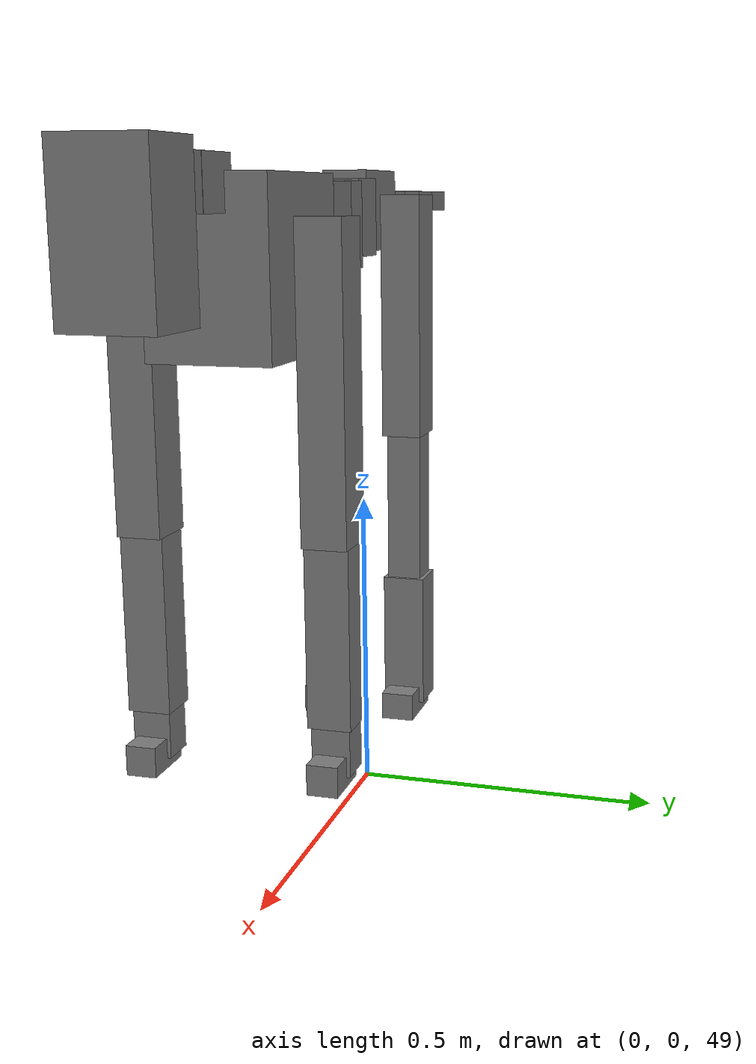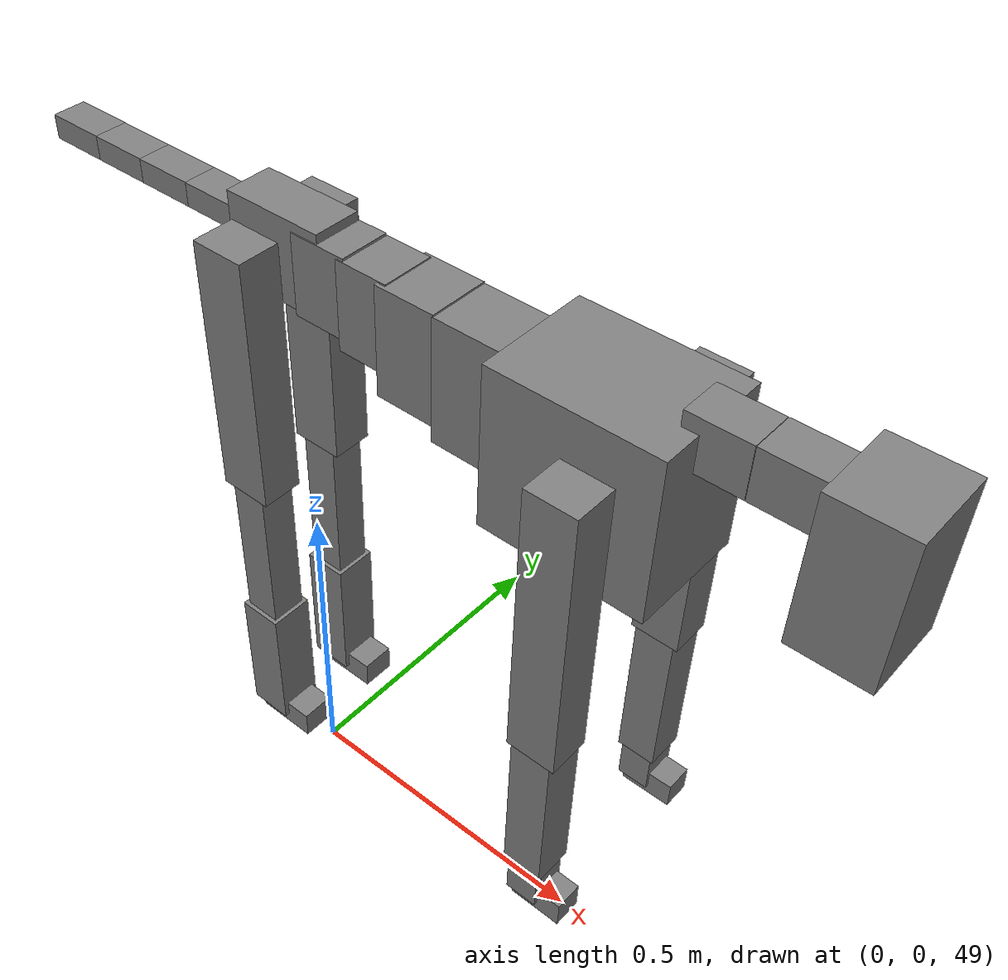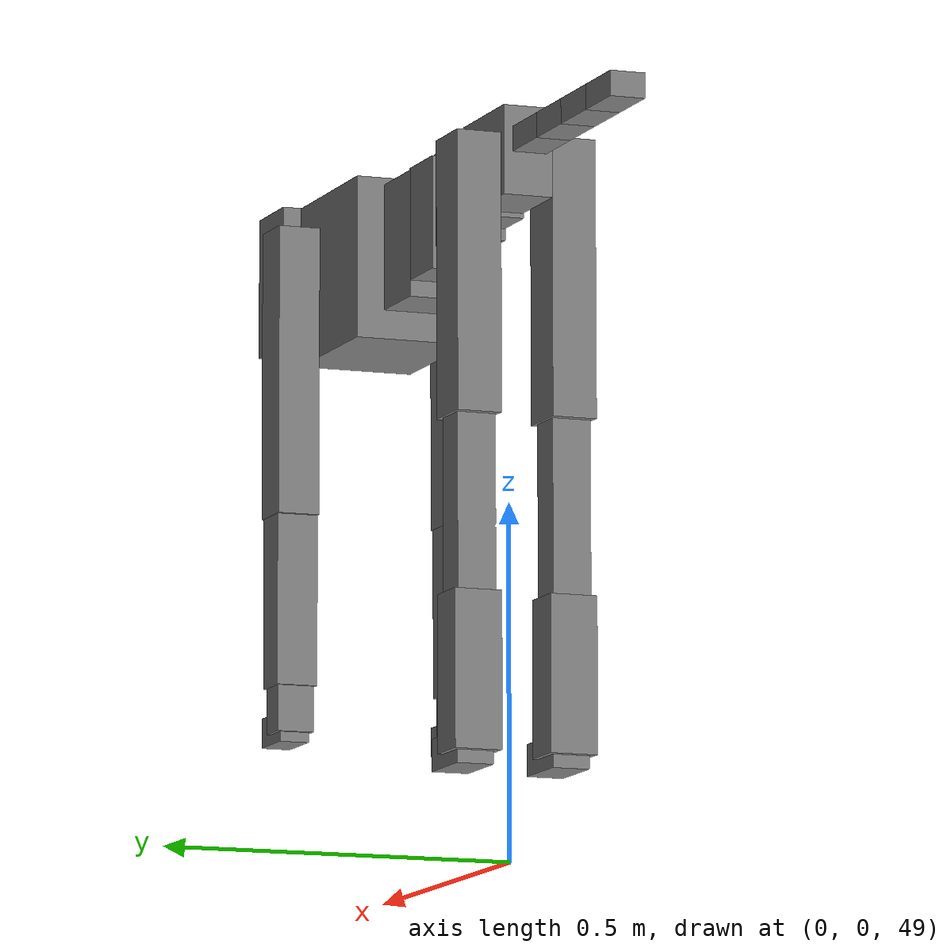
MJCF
<mujoco model="dog">

    <default>
        <joint armature="0.02" stiffness="1" damping="0.2" limited="true"/>
        <geom condim="3" friction="1 0.05 0.05" margin="0.01"/>
        <motor ctrllimited="true" ctrlrange="-1.0 1.0" forcelimited="true" gear="50"/>
    </default>

    <compiler inertiafromgeom="true" angle="radian"/>

    <option timestep="0.016" iterations="50" tolerance="1e-10" solver="Newton" jacobian="dense" cone="pyramidal"/>

    <size nconmax="20000" njmax="60000" nstack="5000000"/>
    <visual>
        <map force="0.1" zfar="30"/>
        <rgba haze="0.15 0.25 0.35 1"/>
        <quality shadowsize="2048"/>
        <global offwidth="800" offheight="800"/>
    </visual>

    <asset>
        <texture type="skybox" builtin="gradient" rgb1="0.3 0.5 0.7" rgb2="0 0 0" width="512" height="512"/>
        <texture name="texplane" type="2d" builtin="checker" rgb1=".2 .3 .4" rgb2=".1 0.15 0.2" width="512" height="512"
                 mark="cross" markrgb=".8 .8 .8"/>
        <texture name="texgeom" type="cube" builtin="flat" mark="cross" width="127" height="1278" rgb1="0.8 0.6 0.4"
                 rgb2="0.8 0.6 0.4" markrgb="1 1 1" random="0.01"/>

        <material name="matplane" reflectance="0.3" texture="texplane" texrepeat="1 1" texuniform="true"/>
        <material name="matgeom" texture="texgeom" texuniform="true" rgba="0.8 0.6 .4 1"/>
    </asset>

    <worldbody>
        <geom name="floor" pos="0 0 0" size="0 0 .25" type="plane" material="matplane" condim="3"/>

        <light directional="false" diffuse=".2 .2 .2" specular="0 0 0" pos="0 0 5" dir="0 0 -1" castshadow="false"/>
        <light mode="targetbodycom" target="torso" directional="false" diffuse=".8 .8 .8" specular="0.3 0.3 0.3"
               pos="0 0 4.0" dir="0 0 -1"/>

        <body name="root" pos="0 0 50">
            <freejoint name="root_1"/>
            <geom type="box" pos="0 0 -0.02" size="0.0774  0.0358  0.063" density="2030"/>

            <body name="spine1" pos="0.054 0 0">
                <joint name="spine1_y" axis="0 1 0" range="0 0.7" limited="true"/>
                <geom type="box" pos="0.02375 0 -0.03" size="0.04375  0.0375  0.05985" density="2030"/>

                <body name="spine2" pos="0.0612 0 0">
                    <joint name="spine2_y" axis="0 1 0" range="-0.15 0.15" limited="true"/>
                    <geom type="box" pos="0.03555  0  -0.04" size="0.04055  0.039  0.06615" density="2030"/>

                    <body name="spine3" pos="0.0730 0 0">
                        <joint name="spine3_y" axis="0 1 0" range="-0.15 0.15" limited="true"/>
                        <geom type="box" pos="0.03555  0  -0.057" size="0.04555  0.0445  0.081" density="2030"/>

                        <body name="spine4" pos="0.0780 0 0">
                            <joint name="spine4_y" axis="0 1 0" range="-0.15 0.15" limited="true"/>
                            <geom type="box" pos="0.05265  0  -0.07" size="0.05265  0.045  0.09135" density="2030"/>

                            <body name="torso" pos="0.1082 0 0">
                                <joint name="torso_y" axis="0 1 0" range="-0.15 0.15" limited="true"/>
                                <geom type="box" pos="0.11925  0  -0.085" size="0.11925  0.085  0.11745"
                                      density="2030"/>

                                <body name="neck1" pos="0.2160  0   0.0180">
                                    <joint name="neck1_y" axis="0 1 0" range="-1.2  -1" limited="true"/>
                                    <geom type="box" pos="0.0423  0  0" size="0.0423  0.03  0.036" density="2325"/>

                                    <body name="neck2" pos="0.0853  0  0">
                                        <joint name="neck2_y" axis="0 1 0" range="0.1  0" limited="true"/>
                                        <geom type="box" pos="0.0423  0  0" size="0.0423  0.03  0.036" density="2325"/>

                                        <body name="head" pos="0.0853  0  0">
                                            <joint name="head_y" axis="0 1 0" range="-0.3  -0.2" limited="true"/>
                                            <geom type="box" pos="0.0531  0  -0.055" size="0.0531  0.06  0.1044"
                                                  density="4030"/>

                                        </body>
                                    </body>
                                </body>

                                <body name="front_shoulder" pos="0.156  0   -0.0480">
                                    <joint name="front_shoulder_y" axis="0 1 0" range="-1 1.5" limited="true"/>
                                    <geom type="box" pos="0 0.13 -0.1833" size="0.0361  0.0309  0.2099" density="1158"/>
                                    <geom type="box" pos="0 -0.13 -0.1833" size="0.0361  0.0309  0.2099"
                                          density="1158"/>

                                    <body name="front_elbow" pos="0  0  -0.3665">
                                        <joint name="front_elbow_y" axis="0 1 0" range="-2 0" limited="true"/>
                                        <geom type="box" pos="0 0.13 -0.1370" size="0.0295  0.0302  0.1370"
                                              density="1081"/>
                                        <geom type="box" pos="0 -0.13 -0.1370" size="0.0295  0.0302  0.1370"
                                              density="1081"/>

                                        <body name="front_wrist" pos="0  0  -0.2739">
                                            <joint name="front_wrist_y" axis="0 1 0" range="-0.2 0" limited="true"/>
                                            <geom type="box" pos="0 0.13 -0.0267" size="0.0241  0.0268  0.0398"
                                                  density="1664"/>
                                            <geom type="box" pos="0 -0.13 -0.0267" size="0.0241  0.0268  0.0398"
                                                  density="1664"/>

                                            <body name="front_finger_end" pos="0  0  -0.0533">
                                                <joint name="front_finger_y" axis="0 1 0" range="-0.4 1"
                                                       limited="true"/>
                                                <geom type="box" pos="0.0215  0.13  -0.0063"
                                                      size="0.0394  0.0215  0.0213" density="1515"/>
                                                <geom type="box" pos="0.0215  -0.13  -0.0063"
                                                      size="0.0394  0.0215  0.0213" density="1515"/>

                                            </body>

                                        </body>
                                    </body>
                                </body>

                            </body>
                        </body>
                    </body>
                </body>
            </body>

            <body name="back_hip" pos="-0.03 0 -0.018">
                <joint name="back_hip_y" axis="0 1 0" range="-1.5 0.3" limited="true"/>
                <geom type="box" pos="0 0.07 -0.1737" size="0.0410  0.0322  0.1965" density="1154"/>
                <geom type="box" pos="0 -0.07 -0.1737" size="0.0410  0.0322  0.1965" density="1154"/>

                <body name="back_knee" pos="0  0  -0.3475">
                    <joint name="back_knee_y" axis="0 1 0" range="0 2.8" limited="true"/>
                    <geom type="box" pos="0 0.07 -0.1397" size="0.0283  0.0279  0.1553" density="1227"/>
                    <geom type="box" pos="0 -0.07 -0.1397" size="0.0283  0.0279  0.1553" density="1227"/>

                    <body name="back_ankle" pos="0  0  -0.2795">
                        <joint name="back_ankle_y" axis="0 1 0" range="-2.2 0" limited="true"/>
                        <geom type="box" pos="0 0.07 -0.0990" size="0.0343  0.0343  0.1102" density="1284"/>
                        <geom type="box" pos="0 -0.07 -0.0990" size="0.0343  0.0343  0.1102" density="1284"/>

                        <body name="back_toe_end" pos="0  0  -0.1980">
                            <joint name="back_toe_y" axis="0 1 0" range="-0.4 1" limited="true"/>
                            <geom type="box" pos="0.0268  0.07  -0.0074" size="0.0491  0.0268  0.0224" density="1515"/>
                            <geom type="box" pos="0.0268  -0.07  -0.0074" size="0.0491  0.0268  0.0224" density="1515"/>

                        </body>
                    </body>
                </body>
            </body>

            <body name="tail1" pos="-0.074 0 -0.006">
                <joint name="tail1_y" axis="0 1 0" range="-0.2 0.2" limited="true"/>
                <geom type="box" pos="-0.0536  0  0" size="0.045  0.025  0.0175" density="1587"/>

                <body name="tail2" pos="-0.09 0 0">
                    <joint name="tail2_y" axis="0 1 0" range="-0.2 0.2" limited="true"/>
                    <geom type="box" pos="-0.0536  0  0" size="0.045  0.025  0.0175" density="1587"/>

                    <body name="tail3" pos="-0.09 0 0">
                        <joint name="tail3_y" axis="0 1 0" range="-0.2 0.2" limited="true"/>
                        <geom type="box" pos="-0.0536  0  0" size="0.045  0.025  0.0175" density="1587"/>

                        <body name="tail4" pos="-0.09 0 0">
                            <joint name="tail4_y" axis="0 1 0" range="-0.2 0.2" limited="true"/>
                            <geom type="box" pos="-0.0536  0  0" size="0.045  0.025  0.0175" density="1587"/>

                        </body>
                    </body>
                </body>
            </body>
        </body>
    </worldbody>

    <actuator>
        <motor joint="spine1_y" forcerange="-150 150     "/>
        <motor joint="spine2_y" forcerange="-150 150     "/>
        <motor joint="spine3_y" forcerange="-150 150     "/>
        <motor joint="spine4_y" forcerange="-150 150     "/>
        <motor joint="torso_y" forcerange="-150 150     "/>
        <motor joint="neck1_y" forcerange="-100 100       "/>
        <motor joint="neck2_y" forcerange="-100 100       "/>
        <motor joint="head_y" forcerange="-150 150       "/>
        <motor joint="front_shoulder_y" forcerange="-144.56 161.40"/>
        <motor joint="front_elbow_y" forcerange="-187.02 132.44"/>
        <motor joint="front_wrist_y" forcerange="-95.24 119.00"/>
        <motor joint="front_finger_y" forcerange="-41.74 33.00"/>
        <motor joint="back_hip_y" forcerange="-267.01 362.12"/>
        <motor joint="back_knee_y" forcerange="-310.59 295.69"/>
        <motor joint="back_angle_y" forcerange="-214.06 234.01"/>
        <motor joint="back_toe_y" forcerange="-84.91 49.46"/>
        <motor joint="tail1_y" forcerange="-50 50     "/>
        <motor joint="tail2_y" forcerange="-50 50     "/>
        <motor joint="tail3_y" forcerange="-50 50     "/>
        <motor joint="tail4_y" forcerange="-50 50     "/>
    </actuator>
</mujoco>
